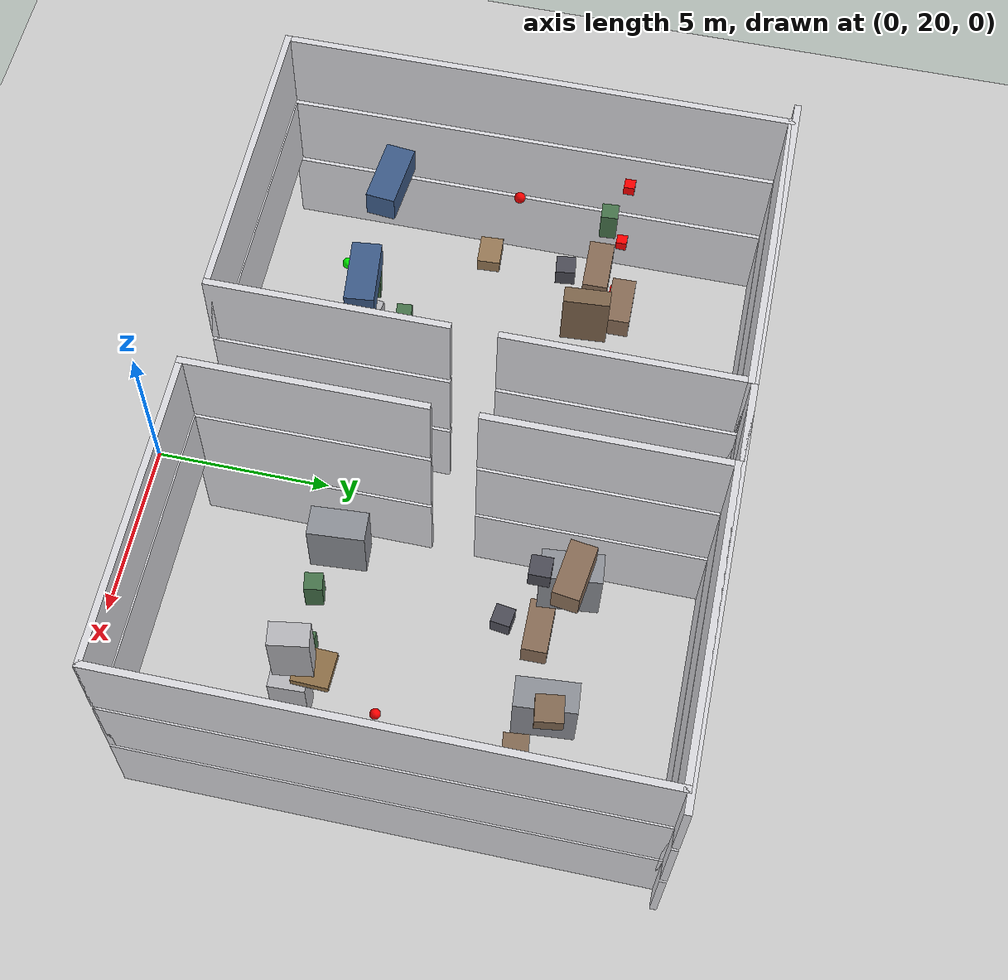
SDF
<sdf version="1.7">
 <world name="generated_world">
  <include><uri>model://sun</uri></include>
  <include><uri>model://ground_plane</uri></include>
  <model name="generated_building">
   <static>true</static>
   <link name="exterior_north_floor_0">
    <pose>0.0000 35.9100 1.2250 0.0000 0.0000 0.0000</pose>
    <collision name="exterior_north_floor_0_collision">
     <geometry><box><size>20.0000 0.1800 2.4500</size></box></geometry>
    </collision>
    <visual name="exterior_north_floor_0_visual">
     <geometry><box><size>20.0000 0.1800 2.4500</size></box></geometry>
     <material><ambient>0.86 0.86 0.88 1</ambient><diffuse>0.86 0.86 0.88 1</diffuse></material>
    </visual>
    <gravity>false</gravity>
   </link>
   <link name="north_end_wall_floor_0">
    <pose>0.0000 35.9100 1.2250 0.0000 0.0000 0.0000</pose>
    <collision name="north_end_wall_floor_0_collision">
     <geometry><box><size>2.2000 0.1800 2.4500</size></box></geometry>
    </collision>
    <visual name="north_end_wall_floor_0_visual">
     <geometry><box><size>2.2000 0.1800 2.4500</size></box></geometry>
     <material><ambient>0.86 0.86 0.88 1</ambient><diffuse>0.86 0.86 0.88 1</diffuse></material>
    </visual>
    <gravity>false</gravity>
   </link>
   <link name="floor_0_room_2_corridor_wall_lower">
    <pose>-1.1900 25.0875 1.2250 0.0000 0.0000 0.0000</pose>
    <collision name="floor_0_room_2_corridor_wall_lower_collision">
     <geometry><box><size>0.1800 6.4150 2.4500</size></box></geometry>
    </collision>
    <visual name="floor_0_room_2_corridor_wall_lower_visual">
     <geometry><box><size>0.1800 6.4150 2.4500</size></box></geometry>
     <material><ambient>0.86 0.86 0.88 1</ambient><diffuse>0.86 0.86 0.88 1</diffuse></material>
    </visual>
    <gravity>false</gravity>
   </link>
   <link name="floor_0_room_2_corridor_wall_upper">
    <pose>-1.1900 32.7025 1.2250 0.0000 0.0000 0.0000</pose>
    <collision name="floor_0_room_2_corridor_wall_upper_collision">
     <geometry><box><size>0.1800 6.4150 2.4500</size></box></geometry>
    </collision>
    <visual name="floor_0_room_2_corridor_wall_upper_visual">
     <geometry><box><size>0.1800 6.4150 2.4500</size></box></geometry>
     <material><ambient>0.86 0.86 0.88 1</ambient><diffuse>0.86 0.86 0.88 1</diffuse></material>
    </visual>
    <gravity>false</gravity>
   </link>
   <link name="floor_0_room_2_west_wall">
    <pose>-9.4100 28.8950 1.2250 0.0000 0.0000 0.0000</pose>
    <collision name="floor_0_room_2_west_wall_collision">
     <geometry><box><size>0.1800 14.0300 2.4500</size></box></geometry>
    </collision>
    <visual name="floor_0_room_2_west_wall_visual">
     <geometry><box><size>0.1800 14.0300 2.4500</size></box></geometry>
     <material><ambient>0.86 0.86 0.88 1</ambient><diffuse>0.86 0.86 0.88 1</diffuse></material>
    </visual>
    <gravity>false</gravity>
   </link>
   <link name="floor_0_room_2_north_wall">
    <pose>-5.3000 35.8200 1.2250 0.0000 0.0000 0.0000</pose>
    <collision name="floor_0_room_2_north_wall_collision">
     <geometry><box><size>8.4000 0.1800 2.4500</size></box></geometry>
    </collision>
    <visual name="floor_0_room_2_north_wall_visual">
     <geometry><box><size>8.4000 0.1800 2.4500</size></box></geometry>
     <material><ambient>0.86 0.86 0.88 1</ambient><diffuse>0.86 0.86 0.88 1</diffuse></material>
    </visual>
    <gravity>false</gravity>
   </link>
   <link name="floor_0_room_3_corridor_wall_lower">
    <pose>1.1900 25.0875 1.2250 0.0000 0.0000 0.0000</pose>
    <collision name="floor_0_room_3_corridor_wall_lower_collision">
     <geometry><box><size>0.1800 6.4150 2.4500</size></box></geometry>
    </collision>
    <visual name="floor_0_room_3_corridor_wall_lower_visual">
     <geometry><box><size>0.1800 6.4150 2.4500</size></box></geometry>
     <material><ambient>0.86 0.86 0.88 1</ambient><diffuse>0.86 0.86 0.88 1</diffuse></material>
    </visual>
    <gravity>false</gravity>
   </link>
   <link name="floor_0_room_3_corridor_wall_upper">
    <pose>1.1900 32.7025 1.2250 0.0000 0.0000 0.0000</pose>
    <collision name="floor_0_room_3_corridor_wall_upper_collision">
     <geometry><box><size>0.1800 6.4150 2.4500</size></box></geometry>
    </collision>
    <visual name="floor_0_room_3_corridor_wall_upper_visual">
     <geometry><box><size>0.1800 6.4150 2.4500</size></box></geometry>
     <material><ambient>0.86 0.86 0.88 1</ambient><diffuse>0.86 0.86 0.88 1</diffuse></material>
    </visual>
    <gravity>false</gravity>
   </link>
   <link name="floor_0_room_3_east_wall">
    <pose>9.4100 28.8950 1.2250 0.0000 0.0000 0.0000</pose>
    <collision name="floor_0_room_3_east_wall_collision">
     <geometry><box><size>0.1800 14.0300 2.4500</size></box></geometry>
    </collision>
    <visual name="floor_0_room_3_east_wall_visual">
     <geometry><box><size>0.1800 14.0300 2.4500</size></box></geometry>
     <material><ambient>0.86 0.86 0.88 1</ambient><diffuse>0.86 0.86 0.88 1</diffuse></material>
    </visual>
    <gravity>false</gravity>
   </link>
   <link name="floor_0_room_3_north_wall">
    <pose>5.3000 35.8200 1.2250 0.0000 0.0000 0.0000</pose>
    <collision name="floor_0_room_3_north_wall_collision">
     <geometry><box><size>8.4000 0.1800 2.4500</size></box></geometry>
    </collision>
    <visual name="floor_0_room_3_north_wall_visual">
     <geometry><box><size>8.4000 0.1800 2.4500</size></box></geometry>
     <material><ambient>0.86 0.86 0.88 1</ambient><diffuse>0.86 0.86 0.88 1</diffuse></material>
    </visual>
    <gravity>false</gravity>
   </link>
   <link name="floor_0_room_2_desk">
    <pose>-7.46135201 32.1159734 0.45 0 0 0.0158183873</pose>
    <collision name="floor_0_room_2_desk_collision">
     <geometry><box><size>1.5000 0.7000 0.7500</size></box></geometry>
    </collision>
    <visual name="floor_0_room_2_desk_visual">
     <geometry><box><size>1.5000 0.7000 0.7500</size></box></geometry>
     <material><ambient>0.54 0.43 0.34 1</ambient><diffuse>0.54 0.43 0.34 1</diffuse></material>
    </visual>
    <gravity>false</gravity>
   </link>
   <link name="floor_0_room_2_chair">
    <pose>-7.37490355 31.1940905 0.28 0 0 -0.173173231</pose>
    <collision name="floor_0_room_2_chair_collision">
     <geometry><box><size>0.5500 0.5500 0.5500</size></box></geometry>
    </collision>
    <visual name="floor_0_room_2_chair_visual">
     <geometry><box><size>0.5500 0.5500 0.5500</size></box></geometry>
     <material><ambient>0.30 0.30 0.34 1</ambient><diffuse>0.30 0.30 0.34 1</diffuse></material>
    </visual>
    <gravity>false</gravity>
   </link>
   <link name="floor_0_room_2_cabinet">
    <pose>-4.02194807 26.0336138 0.9 0 0 0.106755562</pose>
    <collision name="floor_0_room_2_cabinet_collision">
     <geometry><box><size>0.6000 1.0000 1.8000</size></box></geometry>
    </collision>
    <visual name="floor_0_room_2_cabinet_visual">
     <geometry><box><size>0.6000 1.0000 1.8000</size></box></geometry>
     <material><ambient>0.72 0.72 0.74 1</ambient><diffuse>0.72 0.72 0.74 1</diffuse></material>
    </visual>
    <gravity>false</gravity>
   </link>
   <link name="floor_0_room_2_side_table">
    <pose>-4.01439308 32.1215445 0.32 0 0 0.059338545</pose>
    <collision name="floor_0_room_2_side_table_collision">
     <geometry><box><size>0.7000 0.7000 0.4500</size></box></geometry>
    </collision>
    <visual name="floor_0_room_2_side_table_visual">
     <geometry><box><size>0.7000 0.7000 0.4500</size></box></geometry>
     <material><ambient>0.52 0.42 0.33 1</ambient><diffuse>0.52 0.42 0.33 1</diffuse></material>
    </visual>
    <gravity>false</gravity>
   </link>
   <link name="floor_0_room_2_planter">
    <pose>-5.70854987 25.9253672 0.45 0 0 0.0981988586</pose>
    <collision name="floor_0_room_2_planter_collision">
     <geometry><box><size>0.4500 0.4500 0.9000</size></box></geometry>
    </collision>
    <visual name="floor_0_room_2_planter_visual">
     <geometry><box><size>0.4500 0.4500 0.9000</size></box></geometry>
     <material><ambient>0.28 0.46 0.30 1</ambient><diffuse>0.28 0.46 0.30 1</diffuse></material>
    </visual>
    <gravity>false</gravity>
   </link>
   <link name="floor_0_room_3_desk">
    <pose>3.32821342 31.6858563 0.45 0 0 0.0100471294</pose>
    <collision name="floor_0_room_3_desk_collision">
     <geometry><box><size>1.5000 0.7000 0.7500</size></box></geometry>
    </collision>
    <visual name="floor_0_room_3_desk_visual">
     <geometry><box><size>1.5000 0.7000 0.7500</size></box></geometry>
     <material><ambient>0.54 0.43 0.34 1</ambient><diffuse>0.54 0.43 0.34 1</diffuse></material>
    </visual>
    <gravity>false</gravity>
   </link>
   <link name="floor_0_room_3_chair">
    <pose>3.11130846 30.6734679 0.28 0 0 -0.134448262</pose>
    <collision name="floor_0_room_3_chair_collision">
     <geometry><box><size>0.5500 0.5500 0.5500</size></box></geometry>
    </collision>
    <visual name="floor_0_room_3_chair_visual">
     <geometry><box><size>0.5500 0.5500 0.5500</size></box></geometry>
     <material><ambient>0.30 0.30 0.34 1</ambient><diffuse>0.30 0.30 0.34 1</diffuse></material>
    </visual>
    <gravity>false</gravity>
   </link>
   <link name="floor_0_room_3_cabinet">
    <pose>6.58164005 25.6609611 0.9 0 0 0.0411782034</pose>
    <collision name="floor_0_room_3_cabinet_collision">
     <geometry><box><size>0.6000 1.0000 1.8000</size></box></geometry>
    </collision>
    <visual name="floor_0_room_3_cabinet_visual">
     <geometry><box><size>0.6000 1.0000 1.8000</size></box></geometry>
     <material><ambient>0.72 0.72 0.74 1</ambient><diffuse>0.72 0.72 0.74 1</diffuse></material>
    </visual>
    <gravity>false</gravity>
   </link>
   <link name="floor_0_room_3_side_table">
    <pose>6.68390586 31.7130007 0.32 0 0 0.102052026</pose>
    <collision name="floor_0_room_3_side_table_collision">
     <geometry><box><size>0.7000 0.7000 0.4500</size></box></geometry>
    </collision>
    <visual name="floor_0_room_3_side_table_visual">
     <geometry><box><size>0.7000 0.7000 0.4500</size></box></geometry>
     <material><ambient>0.52 0.42 0.33 1</ambient><diffuse>0.52 0.42 0.33 1</diffuse></material>
    </visual>
    <gravity>false</gravity>
   </link>
   <link name="floor_0_room_3_planter">
    <pose>5.01652921 25.6828302 0.45 0 0 -0.0366846639</pose>
    <collision name="floor_0_room_3_planter_collision">
     <geometry><box><size>0.4500 0.4500 0.9000</size></box></geometry>
    </collision>
    <visual name="floor_0_room_3_planter_visual">
     <geometry><box><size>0.4500 0.4500 0.9000</size></box></geometry>
     <material><ambient>0.28 0.46 0.30 1</ambient><diffuse>0.28 0.46 0.30 1</diffuse></material>
    </visual>
    <gravity>false</gravity>
   </link>
   <link name="exterior_north_floor_1">
    <pose>0.0000 35.9100 3.8250 0.0000 0.0000 0.0000</pose>
    <collision name="exterior_north_floor_1_collision">
     <geometry><box><size>20.0000 0.1800 2.4500</size></box></geometry>
    </collision>
    <visual name="exterior_north_floor_1_visual">
     <geometry><box><size>20.0000 0.1800 2.4500</size></box></geometry>
     <material><ambient>0.86 0.86 0.88 1</ambient><diffuse>0.86 0.86 0.88 1</diffuse></material>
    </visual>
    <gravity>false</gravity>
   </link>
   <link name="north_end_wall_floor_1">
    <pose>0.0000 35.9100 3.8250 0.0000 0.0000 0.0000</pose>
    <collision name="north_end_wall_floor_1_collision">
     <geometry><box><size>2.2000 0.1800 2.4500</size></box></geometry>
    </collision>
    <visual name="north_end_wall_floor_1_visual">
     <geometry><box><size>2.2000 0.1800 2.4500</size></box></geometry>
     <material><ambient>0.86 0.86 0.88 1</ambient><diffuse>0.86 0.86 0.88 1</diffuse></material>
    </visual>
    <gravity>false</gravity>
   </link>
   <link name="floor_1_room_2_corridor_wall_lower">
    <pose>-1.1900 25.0875 3.8250 0.0000 0.0000 0.0000</pose>
    <collision name="floor_1_room_2_corridor_wall_lower_collision">
     <geometry><box><size>0.1800 6.4150 2.4500</size></box></geometry>
    </collision>
    <visual name="floor_1_room_2_corridor_wall_lower_visual">
     <geometry><box><size>0.1800 6.4150 2.4500</size></box></geometry>
     <material><ambient>0.86 0.86 0.88 1</ambient><diffuse>0.86 0.86 0.88 1</diffuse></material>
    </visual>
    <gravity>false</gravity>
   </link>
   <link name="floor_1_room_2_corridor_wall_upper">
    <pose>-1.1900 32.7025 3.8250 0.0000 0.0000 0.0000</pose>
    <collision name="floor_1_room_2_corridor_wall_upper_collision">
     <geometry><box><size>0.1800 6.4150 2.4500</size></box></geometry>
    </collision>
    <visual name="floor_1_room_2_corridor_wall_upper_visual">
     <geometry><box><size>0.1800 6.4150 2.4500</size></box></geometry>
     <material><ambient>0.86 0.86 0.88 1</ambient><diffuse>0.86 0.86 0.88 1</diffuse></material>
    </visual>
    <gravity>false</gravity>
   </link>
   <link name="floor_1_room_2_west_wall">
    <pose>-9.4100 28.8950 3.8250 0.0000 0.0000 0.0000</pose>
    <collision name="floor_1_room_2_west_wall_collision">
     <geometry><box><size>0.1800 14.0300 2.4500</size></box></geometry>
    </collision>
    <visual name="floor_1_room_2_west_wall_visual">
     <geometry><box><size>0.1800 14.0300 2.4500</size></box></geometry>
     <material><ambient>0.86 0.86 0.88 1</ambient><diffuse>0.86 0.86 0.88 1</diffuse></material>
    </visual>
    <gravity>false</gravity>
   </link>
   <link name="floor_1_room_2_south_wall">
    <pose>-5.3000 21.9700 3.8250 0.0000 0.0000 0.0000</pose>
    <collision name="floor_1_room_2_south_wall_collision">
     <geometry><box><size>8.4000 0.1800 2.4500</size></box></geometry>
    </collision>
    <visual name="floor_1_room_2_south_wall_visual">
     <geometry><box><size>8.4000 0.1800 2.4500</size></box></geometry>
     <material><ambient>0.86 0.86 0.88 1</ambient><diffuse>0.86 0.86 0.88 1</diffuse></material>
    </visual>
    <gravity>false</gravity>
   </link>
   <link name="floor_1_room_2_north_wall">
    <pose>-5.3000 35.8200 3.8250 0.0000 0.0000 0.0000</pose>
    <collision name="floor_1_room_2_north_wall_collision">
     <geometry><box><size>8.4000 0.1800 2.4500</size></box></geometry>
    </collision>
    <visual name="floor_1_room_2_north_wall_visual">
     <geometry><box><size>8.4000 0.1800 2.4500</size></box></geometry>
     <material><ambient>0.86 0.86 0.88 1</ambient><diffuse>0.86 0.86 0.88 1</diffuse></material>
    </visual>
    <gravity>false</gravity>
   </link>
   <link name="floor_1_room_3_corridor_wall_lower">
    <pose>1.1900 25.0875 3.8250 0.0000 0.0000 0.0000</pose>
    <collision name="floor_1_room_3_corridor_wall_lower_collision">
     <geometry><box><size>0.1800 6.4150 2.4500</size></box></geometry>
    </collision>
    <visual name="floor_1_room_3_corridor_wall_lower_visual">
     <geometry><box><size>0.1800 6.4150 2.4500</size></box></geometry>
     <material><ambient>0.86 0.86 0.88 1</ambient><diffuse>0.86 0.86 0.88 1</diffuse></material>
    </visual>
    <gravity>false</gravity>
   </link>
   <link name="floor_1_room_3_corridor_wall_upper">
    <pose>1.1900 32.7025 3.8250 0.0000 0.0000 0.0000</pose>
    <collision name="floor_1_room_3_corridor_wall_upper_collision">
     <geometry><box><size>0.1800 6.4150 2.4500</size></box></geometry>
    </collision>
    <visual name="floor_1_room_3_corridor_wall_upper_visual">
     <geometry><box><size>0.1800 6.4150 2.4500</size></box></geometry>
     <material><ambient>0.86 0.86 0.88 1</ambient><diffuse>0.86 0.86 0.88 1</diffuse></material>
    </visual>
    <gravity>false</gravity>
   </link>
   <link name="floor_1_room_3_east_wall">
    <pose>9.4100 28.8950 3.8250 0.0000 0.0000 0.0000</pose>
    <collision name="floor_1_room_3_east_wall_collision">
     <geometry><box><size>0.1800 14.0300 2.4500</size></box></geometry>
    </collision>
    <visual name="floor_1_room_3_east_wall_visual">
     <geometry><box><size>0.1800 14.0300 2.4500</size></box></geometry>
     <material><ambient>0.86 0.86 0.88 1</ambient><diffuse>0.86 0.86 0.88 1</diffuse></material>
    </visual>
    <gravity>false</gravity>
   </link>
   <link name="floor_1_room_3_south_wall">
    <pose>5.3000 21.9700 3.8250 0.0000 0.0000 0.0000</pose>
    <collision name="floor_1_room_3_south_wall_collision">
     <geometry><box><size>8.4000 0.1800 2.4500</size></box></geometry>
    </collision>
    <visual name="floor_1_room_3_south_wall_visual">
     <geometry><box><size>8.4000 0.1800 2.4500</size></box></geometry>
     <material><ambient>0.86 0.86 0.88 1</ambient><diffuse>0.86 0.86 0.88 1</diffuse></material>
    </visual>
    <gravity>false</gravity>
   </link>
   <link name="floor_1_room_3_north_wall">
    <pose>5.3000 35.8200 3.8250 0.0000 0.0000 0.0000</pose>
    <collision name="floor_1_room_3_north_wall_collision">
     <geometry><box><size>8.4000 0.1800 2.4500</size></box></geometry>
    </collision>
    <visual name="floor_1_room_3_north_wall_visual">
     <geometry><box><size>8.4000 0.1800 2.4500</size></box></geometry>
     <material><ambient>0.86 0.86 0.88 1</ambient><diffuse>0.86 0.86 0.88 1</diffuse></material>
    </visual>
    <gravity>false</gravity>
   </link>
   <link name="floor_1_room_2_desk">
    <pose>-6.76269468 31.3724194 3.05 0 0 0.0217037175</pose>
    <collision name="floor_1_room_2_desk_collision">
     <geometry><box><size>1.5000 0.7000 0.7500</size></box></geometry>
    </collision>
    <visual name="floor_1_room_2_desk_visual">
     <geometry><box><size>1.5000 0.7000 0.7500</size></box></geometry>
     <material><ambient>0.54 0.43 0.34 1</ambient><diffuse>0.54 0.43 0.34 1</diffuse></material>
    </visual>
    <gravity>false</gravity>
   </link>
   <link name="floor_1_room_2_chair">
    <pose>-6.75245976 30.4551013 2.88 0 0 0.117541975</pose>
    <collision name="floor_1_room_2_chair_collision">
     <geometry><box><size>0.5500 0.5500 0.5500</size></box></geometry>
    </collision>
    <visual name="floor_1_room_2_chair_visual">
     <geometry><box><size>0.5500 0.5500 0.5500</size></box></geometry>
     <material><ambient>0.30 0.30 0.34 1</ambient><diffuse>0.30 0.30 0.34 1</diffuse></material>
    </visual>
    <gravity>false</gravity>
   </link>
   <link name="floor_1_room_2_cabinet">
    <pose>-3.38334132 25.3857285 3.5 0 0 -0.117830622</pose>
    <collision name="floor_1_room_2_cabinet_collision">
     <geometry><box><size>0.6000 1.0000 1.8000</size></box></geometry>
    </collision>
    <visual name="floor_1_room_2_cabinet_visual">
     <geometry><box><size>0.6000 1.0000 1.8000</size></box></geometry>
     <material><ambient>0.72 0.72 0.74 1</ambient><diffuse>0.72 0.72 0.74 1</diffuse></material>
    </visual>
    <gravity>false</gravity>
   </link>
   <link name="floor_1_room_2_side_table">
    <pose>-3.31942091 31.5248161 2.92 0 0 -0.171241131</pose>
    <collision name="floor_1_room_2_side_table_collision">
     <geometry><box><size>0.7000 0.7000 0.4500</size></box></geometry>
    </collision>
    <visual name="floor_1_room_2_side_table_visual">
     <geometry><box><size>0.7000 0.7000 0.4500</size></box></geometry>
     <material><ambient>0.52 0.42 0.33 1</ambient><diffuse>0.52 0.42 0.33 1</diffuse></material>
    </visual>
    <gravity>false</gravity>
   </link>
   <link name="floor_1_room_2_planter">
    <pose>-5.09226645 25.2200709 3.05 0 0 0.123171097</pose>
    <collision name="floor_1_room_2_planter_collision">
     <geometry><box><size>0.4500 0.4500 0.9000</size></box></geometry>
    </collision>
    <visual name="floor_1_room_2_planter_visual">
     <geometry><box><size>0.4500 0.4500 0.9000</size></box></geometry>
     <material><ambient>0.28 0.46 0.30 1</ambient><diffuse>0.28 0.46 0.30 1</diffuse></material>
    </visual>
    <gravity>false</gravity>
   </link>
   <link name="floor_1_room_3_rack_a">
    <pose>3.11626826 32.3416385 3.5 0 0 0.0966155681</pose>
    <collision name="floor_1_room_3_rack_a_collision">
     <geometry><box><size>0.8000 1.6000 1.8000</size></box></geometry>
    </collision>
    <visual name="floor_1_room_3_rack_a_visual">
     <geometry><box><size>0.8000 1.6000 1.8000</size></box></geometry>
     <material><ambient>0.56 0.57 0.60 1</ambient><diffuse>0.56 0.57 0.60 1</diffuse></material>
    </visual>
    <gravity>false</gravity>
   </link>
   <link name="floor_1_room_3_rack_b">
    <pose>6.63130504 32.3479166 3.5 0 0 0.0822238825</pose>
    <collision name="floor_1_room_3_rack_b_collision">
     <geometry><box><size>0.8000 1.6000 1.8000</size></box></geometry>
    </collision>
    <visual name="floor_1_room_3_rack_b_visual">
     <geometry><box><size>0.8000 1.6000 1.8000</size></box></geometry>
     <material><ambient>0.56 0.57 0.60 1</ambient><diffuse>0.56 0.57 0.60 1</diffuse></material>
    </visual>
    <gravity>false</gravity>
   </link>
   <link name="floor_1_room_3_rack_c">
    <pose>3.1903556 26.2900191 3.5 0 0 0.0706468928</pose>
    <collision name="floor_1_room_3_rack_c_collision">
     <geometry><box><size>0.8000 1.5000 1.8000</size></box></geometry>
    </collision>
    <visual name="floor_1_room_3_rack_c_visual">
     <geometry><box><size>0.8000 1.5000 1.8000</size></box></geometry>
     <material><ambient>0.56 0.57 0.60 1</ambient><diffuse>0.56 0.57 0.60 1</diffuse></material>
    </visual>
    <gravity>false</gravity>
   </link>
   <link name="floor_1_room_3_pallet">
    <pose>6.51359247 26.4079548 2.72 0 0 -0.0290461162</pose>
    <collision name="floor_1_room_3_pallet_collision">
     <geometry><box><size>1.0000 1.0000 0.2400</size></box></geometry>
    </collision>
    <visual name="floor_1_room_3_pallet_visual">
     <geometry><box><size>1.0000 1.0000 0.2400</size></box></geometry>
     <material><ambient>0.56 0.44 0.28 1</ambient><diffuse>0.56 0.44 0.28 1</diffuse></material>
    </visual>
    <gravity>false</gravity>
   </link>
   <link name="exterior_north_floor_2">
    <pose>0.0000 35.9100 6.4250 0.0000 0.0000 0.0000</pose>
    <collision name="exterior_north_floor_2_collision">
     <geometry><box><size>20.0000 0.1800 2.4500</size></box></geometry>
    </collision>
    <visual name="exterior_north_floor_2_visual">
     <geometry><box><size>20.0000 0.1800 2.4500</size></box></geometry>
     <material><ambient>0.86 0.86 0.88 1</ambient><diffuse>0.86 0.86 0.88 1</diffuse></material>
    </visual>
    <gravity>false</gravity>
   </link>
   <link name="north_end_wall_floor_2">
    <pose>0.0000 35.9100 6.4250 0.0000 0.0000 0.0000</pose>
    <collision name="north_end_wall_floor_2_collision">
     <geometry><box><size>2.2000 0.1800 2.4500</size></box></geometry>
    </collision>
    <visual name="north_end_wall_floor_2_visual">
     <geometry><box><size>2.2000 0.1800 2.4500</size></box></geometry>
     <material><ambient>0.86 0.86 0.88 1</ambient><diffuse>0.86 0.86 0.88 1</diffuse></material>
    </visual>
    <gravity>false</gravity>
   </link>
   <link name="floor_2_room_2_corridor_wall_lower">
    <pose>-1.1900 25.0875 6.4250 0.0000 0.0000 0.0000</pose>
    <collision name="floor_2_room_2_corridor_wall_lower_collision">
     <geometry><box><size>0.1800 6.4150 2.4500</size></box></geometry>
    </collision>
    <visual name="floor_2_room_2_corridor_wall_lower_visual">
     <geometry><box><size>0.1800 6.4150 2.4500</size></box></geometry>
     <material><ambient>0.86 0.86 0.88 1</ambient><diffuse>0.86 0.86 0.88 1</diffuse></material>
    </visual>
    <gravity>false</gravity>
   </link>
   <link name="floor_2_room_2_corridor_wall_upper">
    <pose>-1.1900 32.7025 6.4250 0.0000 0.0000 0.0000</pose>
    <collision name="floor_2_room_2_corridor_wall_upper_collision">
     <geometry><box><size>0.1800 6.4150 2.4500</size></box></geometry>
    </collision>
    <visual name="floor_2_room_2_corridor_wall_upper_visual">
     <geometry><box><size>0.1800 6.4150 2.4500</size></box></geometry>
     <material><ambient>0.86 0.86 0.88 1</ambient><diffuse>0.86 0.86 0.88 1</diffuse></material>
    </visual>
    <gravity>false</gravity>
   </link>
   <link name="floor_2_room_2_west_wall">
    <pose>-9.4100 28.8950 6.4250 0.0000 0.0000 0.0000</pose>
    <collision name="floor_2_room_2_west_wall_collision">
     <geometry><box><size>0.1800 14.0300 2.4500</size></box></geometry>
    </collision>
    <visual name="floor_2_room_2_west_wall_visual">
     <geometry><box><size>0.1800 14.0300 2.4500</size></box></geometry>
     <material><ambient>0.86 0.86 0.88 1</ambient><diffuse>0.86 0.86 0.88 1</diffuse></material>
    </visual>
    <gravity>false</gravity>
   </link>
   <link name="floor_2_room_2_south_wall">
    <pose>-5.3000 21.9700 6.4250 0.0000 0.0000 0.0000</pose>
    <collision name="floor_2_room_2_south_wall_collision">
     <geometry><box><size>8.4000 0.1800 2.4500</size></box></geometry>
    </collision>
    <visual name="floor_2_room_2_south_wall_visual">
     <geometry><box><size>8.4000 0.1800 2.4500</size></box></geometry>
     <material><ambient>0.86 0.86 0.88 1</ambient><diffuse>0.86 0.86 0.88 1</diffuse></material>
    </visual>
    <gravity>false</gravity>
   </link>
   <link name="floor_2_room_2_north_wall">
    <pose>-5.3000 35.8200 6.4250 0.0000 0.0000 0.0000</pose>
    <collision name="floor_2_room_2_north_wall_collision">
     <geometry><box><size>8.4000 0.1800 2.4500</size></box></geometry>
    </collision>
    <visual name="floor_2_room_2_north_wall_visual">
     <geometry><box><size>8.4000 0.1800 2.4500</size></box></geometry>
     <material><ambient>0.86 0.86 0.88 1</ambient><diffuse>0.86 0.86 0.88 1</diffuse></material>
    </visual>
    <gravity>false</gravity>
   </link>
   <link name="floor_2_room_3_corridor_wall_lower">
    <pose>1.1900 25.0875 6.4250 0.0000 0.0000 0.0000</pose>
    <collision name="floor_2_room_3_corridor_wall_lower_collision">
     <geometry><box><size>0.1800 6.4150 2.4500</size></box></geometry>
    </collision>
    <visual name="floor_2_room_3_corridor_wall_lower_visual">
     <geometry><box><size>0.1800 6.4150 2.4500</size></box></geometry>
     <material><ambient>0.86 0.86 0.88 1</ambient><diffuse>0.86 0.86 0.88 1</diffuse></material>
    </visual>
    <gravity>false</gravity>
   </link>
   <link name="floor_2_room_3_corridor_wall_upper">
    <pose>1.1900 32.7025 6.4250 0.0000 0.0000 0.0000</pose>
    <collision name="floor_2_room_3_corridor_wall_upper_collision">
     <geometry><box><size>0.1800 6.4150 2.4500</size></box></geometry>
    </collision>
    <visual name="floor_2_room_3_corridor_wall_upper_visual">
     <geometry><box><size>0.1800 6.4150 2.4500</size></box></geometry>
     <material><ambient>0.86 0.86 0.88 1</ambient><diffuse>0.86 0.86 0.88 1</diffuse></material>
    </visual>
    <gravity>false</gravity>
   </link>
   <link name="floor_2_room_3_east_wall">
    <pose>9.4100 28.8950 6.4250 0.0000 0.0000 0.0000</pose>
    <collision name="floor_2_room_3_east_wall_collision">
     <geometry><box><size>0.1800 14.0300 2.4500</size></box></geometry>
    </collision>
    <visual name="floor_2_room_3_east_wall_visual">
     <geometry><box><size>0.1800 14.0300 2.4500</size></box></geometry>
     <material><ambient>0.86 0.86 0.88 1</ambient><diffuse>0.86 0.86 0.88 1</diffuse></material>
    </visual>
    <gravity>false</gravity>
   </link>
   <link name="floor_2_room_3_south_wall">
    <pose>5.3000 21.9700 6.4250 0.0000 0.0000 0.0000</pose>
    <collision name="floor_2_room_3_south_wall_collision">
     <geometry><box><size>8.4000 0.1800 2.4500</size></box></geometry>
    </collision>
    <visual name="floor_2_room_3_south_wall_visual">
     <geometry><box><size>8.4000 0.1800 2.4500</size></box></geometry>
     <material><ambient>0.86 0.86 0.88 1</ambient><diffuse>0.86 0.86 0.88 1</diffuse></material>
    </visual>
    <gravity>false</gravity>
   </link>
   <link name="floor_2_room_3_north_wall">
    <pose>5.3000 35.8200 6.4250 0.0000 0.0000 0.0000</pose>
    <collision name="floor_2_room_3_north_wall_collision">
     <geometry><box><size>8.4000 0.1800 2.4500</size></box></geometry>
    </collision>
    <visual name="floor_2_room_3_north_wall_visual">
     <geometry><box><size>8.4000 0.1800 2.4500</size></box></geometry>
     <material><ambient>0.86 0.86 0.88 1</ambient><diffuse>0.86 0.86 0.88 1</diffuse></material>
    </visual>
    <gravity>false</gravity>
   </link>
   <link name="floor_2_room_2_sofa_a">
    <pose>-6.71402906 25.4301956 5.65 0 0 -0.0994779017</pose>
    <collision name="floor_2_room_2_sofa_a_collision">
     <geometry><box><size>1.8000 0.8000 0.8000</size></box></geometry>
    </collision>
    <visual name="floor_2_room_2_sofa_a_visual">
     <geometry><box><size>1.8000 0.8000 0.8000</size></box></geometry>
     <material><ambient>0.24 0.36 0.54 1</ambient><diffuse>0.24 0.36 0.54 1</diffuse></material>
    </visual>
    <gravity>false</gravity>
   </link>
   <link name="floor_2_room_2_sofa_b">
    <pose>-3.39829543 25.44743 5.65 0 0 3.24763364</pose>
    <collision name="floor_2_room_2_sofa_b_collision">
     <geometry><box><size>1.8000 0.8000 0.8000</size></box></geometry>
    </collision>
    <visual name="floor_2_room_2_sofa_b_visual">
     <geometry><box><size>1.8000 0.8000 0.8000</size></box></geometry>
     <material><ambient>0.24 0.36 0.54 1</ambient><diffuse>0.24 0.36 0.54 1</diffuse></material>
    </visual>
    <gravity>false</gravity>
   </link>
   <link name="floor_2_room_2_coffee_table">
    <pose>-5.05279221 28.5545542 5.45 0 0 0.0586070767</pose>
    <collision name="floor_2_room_2_coffee_table_collision">
     <geometry><box><size>0.8000 0.6000 0.4000</size></box></geometry>
    </collision>
    <visual name="floor_2_room_2_coffee_table_visual">
     <geometry><box><size>0.8000 0.6000 0.4000</size></box></geometry>
     <material><ambient>0.60 0.48 0.34 1</ambient><diffuse>0.60 0.48 0.34 1</diffuse></material>
    </visual>
    <gravity>false</gravity>
   </link>
   <link name="floor_2_room_2_bookshelf">
    <pose>-3.27188411 31.4255181 6.05 0 0 0.0717811991</pose>
    <collision name="floor_2_room_2_bookshelf_collision">
     <geometry><box><size>0.4500 1.2000 1.7000</size></box></geometry>
    </collision>
    <visual name="floor_2_room_2_bookshelf_visual">
     <geometry><box><size>0.4500 1.2000 1.7000</size></box></geometry>
     <material><ambient>0.50 0.40 0.30 1</ambient><diffuse>0.50 0.40 0.30 1</diffuse></material>
    </visual>
    <gravity>false</gravity>
   </link>
   <link name="floor_2_room_2_planter">
    <pose>-6.65598994 31.5094593 5.65 0 0 0.0611971183</pose>
    <collision name="floor_2_room_2_planter_collision">
     <geometry><box><size>0.4500 0.4500 0.9000</size></box></geometry>
    </collision>
    <visual name="floor_2_room_2_planter_visual">
     <geometry><box><size>0.4500 0.4500 0.9000</size></box></geometry>
     <material><ambient>0.28 0.46 0.30 1</ambient><diffuse>0.28 0.46 0.30 1</diffuse></material>
    </visual>
    <gravity>false</gravity>
   </link>
   <link name="floor_2_room_3_desk">
    <pose>3.98232931 32.4640041 5.65 0 0 -0.137092182</pose>
    <collision name="floor_2_room_3_desk_collision">
     <geometry><box><size>1.5000 0.7000 0.7500</size></box></geometry>
    </collision>
    <visual name="floor_2_room_3_desk_visual">
     <geometry><box><size>1.5000 0.7000 0.7500</size></box></geometry>
     <material><ambient>0.54 0.43 0.34 1</ambient><diffuse>0.54 0.43 0.34 1</diffuse></material>
    </visual>
    <gravity>false</gravity>
   </link>
   <link name="floor_2_room_3_chair">
    <pose>3.92997394 31.630716 5.48 0 0 0.01606442</pose>
    <collision name="floor_2_room_3_chair_collision">
     <geometry><box><size>0.5500 0.5500 0.5500</size></box></geometry>
    </collision>
    <visual name="floor_2_room_3_chair_visual">
     <geometry><box><size>0.5500 0.5500 0.5500</size></box></geometry>
     <material><ambient>0.30 0.30 0.34 1</ambient><diffuse>0.30 0.30 0.34 1</diffuse></material>
    </visual>
    <gravity>false</gravity>
   </link>
   <link name="floor_2_room_3_cabinet">
    <pose>7.4553752 26.3115801 6.1 0 0 0.156440726</pose>
    <collision name="floor_2_room_3_cabinet_collision">
     <geometry><box><size>0.6000 1.0000 1.8000</size></box></geometry>
    </collision>
    <visual name="floor_2_room_3_cabinet_visual">
     <geometry><box><size>0.6000 1.0000 1.8000</size></box></geometry>
     <material><ambient>0.72 0.72 0.74 1</ambient><diffuse>0.72 0.72 0.74 1</diffuse></material>
    </visual>
    <gravity>false</gravity>
   </link>
   <link name="floor_2_room_3_side_table">
    <pose>7.48818056 32.5054985 5.52 0 0 0.135830353</pose>
    <collision name="floor_2_room_3_side_table_collision">
     <geometry><box><size>0.7000 0.7000 0.4500</size></box></geometry>
    </collision>
    <visual name="floor_2_room_3_side_table_visual">
     <geometry><box><size>0.7000 0.7000 0.4500</size></box></geometry>
     <material><ambient>0.52 0.42 0.33 1</ambient><diffuse>0.52 0.42 0.33 1</diffuse></material>
    </visual>
    <gravity>false</gravity>
   </link>
   <link name="floor_2_room_3_planter">
    <pose>5.63320667 26.3838569 5.65 0 0 0.172994726</pose>
    <collision name="floor_2_room_3_planter_collision">
     <geometry><box><size>0.4500 0.4500 0.9000</size></box></geometry>
    </collision>
    <visual name="floor_2_room_3_planter_visual">
     <geometry><box><size>0.4500 0.4500 0.9000</size></box></geometry>
     <material><ambient>0.28 0.46 0.30 1</ambient><diffuse>0.28 0.46 0.30 1</diffuse></material>
    </visual>
    <gravity>false</gravity>
   </link>
  </model>
  <model name="danger_red_sphere_00">
   <static>true</static>
   <pose>6.45239307 27.8884654 0.15 0 0 0</pose>
   <link name="link">
    <collision name="collision"><geometry><sphere><radius>0.150</radius></sphere></geometry></collision>
    <visual name="visual">
     <geometry><sphere><radius>0.150</radius></sphere></geometry>
     <material><ambient>1.0 0.0 0.0 1.0</ambient><diffuse>1.0 0.0 0.0 1.0</diffuse></material>
    </visual>
   </link>
  </model>
  <model name="distractor_green_sphere_00">
   <static>true</static>
   <pose>-4.024976 24.868426 0.150000 0.000000 0.000000 0.000000</pose>
   <link name="link">
    <collision name="collision"><geometry><sphere><radius>0.150</radius></sphere></geometry></collision>
    <visual name="visual">
     <geometry><sphere><radius>0.150</radius></sphere></geometry>
     <material><ambient>0.0 1.0 0.0 1.0</ambient><diffuse>0.0 1.0 0.0 1.0</diffuse></material>
    </visual>
   </link>
  </model>
  <model name="distractor_red_box_02">
   <static>true</static>
   <pose>-8.138029 31.856463 0.150000 0.000000 0.000000 0.000000</pose>
   <link name="link">
    <collision name="collision">
     <geometry><box><size>0.300000 0.300000 0.300000</size></box></geometry>
    </collision>
    <visual name="visual">
     <geometry><box><size>0.300000 0.300000 0.300000</size></box></geometry>
     <material><ambient>1.0 0.0 0.0 1.0</ambient><diffuse>1.0 0.0 0.0 1.0</diffuse></material>
    </visual>
   </link>
  </model>
  <model name="distractor_green_sphere_00_floor_1">
   <static>true</static>
   <pose>-4.024976 24.868426 2.750000 0.000000 0.000000 0.000000</pose>
   <link name="link">
    <collision name="collision"><geometry><sphere><radius>0.150</radius></sphere></geometry></collision>
    <visual name="visual">
     <geometry><sphere><radius>0.150</radius></sphere></geometry>
     <material><ambient>0.0 1.0 0.0 1.0</ambient><diffuse>0.0 1.0 0.0 1.0</diffuse></material>
    </visual>
   </link>
  </model>
  <model name="distractor_red_box_02_floor_1">
   <static>true</static>
   <pose>-8.138029 31.856463 2.750000 0.000000 0.000000 0.000000</pose>
   <link name="link">
    <collision name="collision">
     <geometry><box><size>0.300000 0.300000 0.300000</size></box></geometry>
    </collision>
    <visual name="visual">
     <geometry><box><size>0.300000 0.300000 0.300000</size></box></geometry>
     <material><ambient>1.0 0.0 0.0 1.0</ambient><diffuse>1.0 0.0 0.0 1.0</diffuse></material>
    </visual>
   </link>
  </model>
  <model name="danger_red_sphere_00_floor_2">
   <static>true</static>
   <pose>-7.13876452 28.9686867 5.35 0 0 0</pose>
   <link name="link">
    <collision name="collision"><geometry><sphere><radius>0.150</radius></sphere></geometry></collision>
    <visual name="visual">
     <geometry><sphere><radius>0.150</radius></sphere></geometry>
     <material><ambient>1.0 0.0 0.0 1.0</ambient><diffuse>1.0 0.0 0.0 1.0</diffuse></material>
    </visual>
   </link>
  </model>
  <model name="distractor_green_sphere_00_floor_2">
   <static>true</static>
   <pose>-4.024976 24.868426 5.350000 0.000000 0.000000 0.000000</pose>
   <link name="link">
    <collision name="collision"><geometry><sphere><radius>0.150</radius></sphere></geometry></collision>
    <visual name="visual">
     <geometry><sphere><radius>0.150</radius></sphere></geometry>
     <material><ambient>0.0 1.0 0.0 1.0</ambient><diffuse>0.0 1.0 0.0 1.0</diffuse></material>
    </visual>
   </link>
  </model>
  <model name="distractor_red_box_02_floor_2">
   <static>true</static>
   <pose>-8.138029 31.856463 5.350000 0.000000 0.000000 0.000000</pose>
   <link name="link">
    <collision name="collision">
     <geometry><box><size>0.300000 0.300000 0.300000</size></box></geometry>
    </collision>
    <visual name="visual">
     <geometry><box><size>0.300000 0.300000 0.300000</size></box></geometry>
     <material><ambient>1.0 0.0 0.0 1.0</ambient><diffuse>1.0 0.0 0.0 1.0</diffuse></material>
    </visual>
   </link>
  </model>
 </world>
</sdf>
